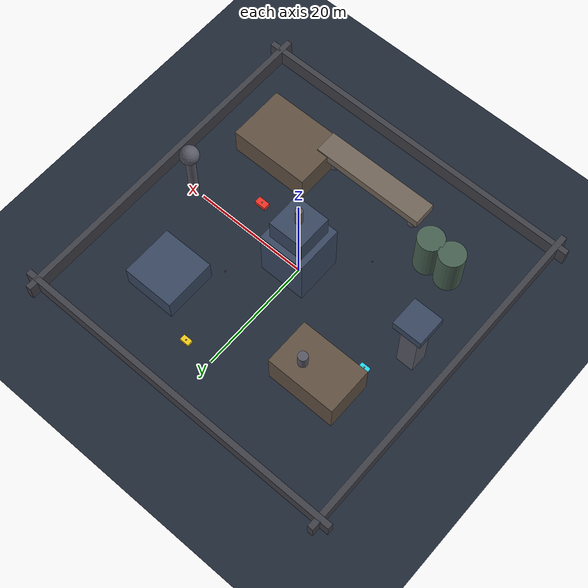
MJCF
<mujoco model="tactical_urban_world_v2">
  <compiler angle="radian" coordinate="local" autolimits="true"/>

  <option timestep="0.001" integrator="implicitfast" gravity="0 0 -9.81"
          viscosity="1.8e-5" density="1.225" wind="0 0 0"
          cone="elliptic" impratio="10"/>

  <visual>
    <global offwidth="1920" offheight="1080"/>
    <quality shadowsize="2048"/>
  </visual>

  <default>
    <joint armature="0.0001" damping="0.001"/>
    <geom condim="4" friction="0.8 0.01 0.01" margin="0.001"/>
    <motor ctrllimited="true" ctrlrange="0 1"/>
    <default class="visual">
      <geom contype="0" conaffinity="0" group="1"/>
    </default>
    <default class="collision">
      <geom group="0"/>
    </default>
  </default>

  <asset>
    <texture name="grid_floor" type="2d" builtin="checker" width="512" height="512"
             rgb1="0.10 0.13 0.18" rgb2="0.15 0.19 0.25"/>
    <material name="floor_mat" texture="grid_floor" texrepeat="30 30" reflectance="0.05"/>

    <material name="mat_skyscraper" rgba="0.22 0.28 0.38 1" specular="0.5" shininess="0.6"/>
    <material name="mat_industrial" rgba="0.38 0.32 0.26 1" specular="0.3" shininess="0.3"/>
    <material name="mat_silo" rgba="0.28 0.38 0.32 1" specular="0.4" shininess="0.5"/>
    <material name="mat_tower" rgba="0.35 0.35 0.40 1" specular="0.6" shininess="0.7"/>
    <material name="mat_bridge" rgba="0.45 0.40 0.35 1" specular="0.3"/>
    <material name="mat_wall" rgba="0.25 0.25 0.28 1"/>

    <!-- Target Materials -->
    <material name="target_mat_convoy" rgba="0.95 0.20 0.15 1" emission="0.7"/>
    <material name="target_mat_fast" rgba="0.15 0.85 0.95 1" emission="0.7"/>
    <material name="target_mat_shadow" rgba="0.95 0.80 0.10 1" emission="0.7"/>

    <!-- Heterogeneous Drone Materials -->
    <material name="drone_0_heavy" rgba="0.15 0.35 0.65 1" specular="0.5"/>
    <material name="drone_1_fast" rgba="0.85 0.30 0.15 1" specular="0.6"/>
    <material name="drone_2_thermal" rgba="0.15 0.75 0.45 1" specular="0.5"/>
    <material name="drone_3_relay" rgba="0.65 0.25 0.75 1" specular="0.5"/>
    <material name="prop_mat" rgba="0.4 0.4 0.45 0.7"/>
  </asset>

  <worldbody>
    <!-- Tactical Theater Floor (60m x 60m) -->
    <geom name="floor" type="plane" size="45 45 0.1" material="floor_mat"/>
    <light name="sun" pos="0 0 60" dir="0 0 -1" diffuse="0.9 0.9 0.95" specular="0.4 0.4 0.4" directional="true"/>
    <light name="fill" pos="-30 -30 35" dir="1 1 -1.5" diffuse="0.35 0.35 0.40" directional="true"/>

    <!-- ================= 8 URBAN TACTICAL STRUCTURES ================= -->
    <!-- 1. Central Skyscraper Alpha (14m Tall Multi-Tier) -->
    <body name="skyscraper_alpha" pos="0.0 0.0 7.0">
      <geom name="skyscraper_base" type="box" size="4.0 4.0 5.0" material="mat_skyscraper"/>
      <geom name="skyscraper_mid" type="box" size="3.0 3.0 2.0" pos="0 0 7.0" material="mat_skyscraper"/>
      <geom name="skyscraper_spire" type="cylinder" size="0.6 2.0" pos="0 0 10.0" material="mat_tower"/>
    </body>

    <!-- 2. Industrial Complex Bravo (6m Tall) -->
    <body name="complex_bravo" pos="-14.0 12.0 3.0">
      <geom name="complex_bravo_main" type="box" size="6.0 4.0 3.0" material="mat_industrial"/>
      <geom name="complex_bravo_vent" type="cylinder" size="0.8 1.5" pos="2 1 4.0" material="mat_tower"/>
    </body>

    <!-- 3. Grain Silo Cluster Charlie (8m Tall) -->
    <body name="silo_cluster_charlie" pos="-16.0 -14.0 4.0">
      <geom name="silo_1" type="cylinder" size="2.2 4.0" pos="-2.0 0 0" material="mat_silo"/>
      <geom name="silo_2" type="cylinder" size="2.2 4.0" pos="2.0 0 0" material="mat_silo"/>
    </body>

    <!-- 4. Logistics Warehouse Depot Delta (5m Tall) -->
    <body name="depot_delta" pos="15.0 -15.0 2.5">
      <geom name="depot_delta_geom" type="box" size="7.0 5.0 2.5" material="mat_industrial"/>
    </body>

    <!-- 5. High-Voltage Power Substation Echo (4m Tall) -->
    <body name="substation_echo" pos="14.0 14.0 2.0">
      <geom name="substation_echo_geom" type="box" size="4.5 4.5 2.0" material="mat_skyscraper"/>
    </body>

    <!-- 6. Communications Radar Pylon Foxtrot (10m Tall) -->
    <body name="radar_pylon_foxtrot" pos="22.0 0.0 5.0">
      <geom name="pylon_mast" type="cylinder" size="0.8 5.0" material="mat_tower"/>
      <geom name="pylon_dish" type="sphere" size="1.6" pos="0 0 5.5" material="mat_tower"/>
    </body>

    <!-- 7. Security Tower Golf (12m Tall) -->
    <body name="security_tower_golf" pos="-22.0 0.0 6.0">
      <geom name="tower_golf_mast" type="box" size="1.5 1.5 6.0" material="mat_tower"/>
      <geom name="tower_golf_cap" type="box" size="2.5 2.5 0.8" pos="0 0 6.5" material="mat_skyscraper"/>
    </body>

    <!-- 8. Elevated Skybridge Hotel (7m Clearance Overpass) -->
    <body name="skybridge_hotel" pos="0.0 -18.0 4.5">
      <geom name="bridge_span" type="box" size="10.0 2.0 0.8" material="mat_bridge"/>
      <geom name="bridge_pillar_l" type="cylinder" size="0.8 3.5" pos="-8 0 -3.5" material="mat_tower"/>
      <geom name="bridge_pillar_r" type="cylinder" size="0.8 3.5" pos="8 0 -3.5" material="mat_tower"/>
    </body>

    <!-- Perimeter Boundary Walls -->
    <geom name="wall_n" type="box" size="30.0 0.5 1.5" pos="0 28.0 1.5" material="mat_wall"/>
    <geom name="wall_s" type="box" size="30.0 0.5 1.5" pos="0 -28.0 1.5" material="mat_wall"/>
    <geom name="wall_e" type="box" size="0.5 30.0 1.5" pos="28.0 0 1.5" material="mat_wall"/>
    <geom name="wall_w" type="box" size="0.5 30.0 1.5" pos="-28.0 0 1.5" material="mat_wall"/>

    <!-- ================= 3 DYNAMIC EVASIVE GROUND TARGETS ================= -->
    <!-- Target 0: Armored Convoy Leader -->
    <body name="target_0" pos="12.0 -5.0 0.35">
      <joint name="target_0_joint" type="free"/>
      <geom name="target_0_geom" type="box" size="1.0 0.6 0.35" material="target_mat_convoy"/>
      <site name="target_0_beacon" pos="0 0 0.4" size="0.12"/>
    </body>

    <!-- Target 1: Fast Evasive Interceptor -->
    <body name="target_1" pos="-18.0 6.0 0.30">
      <joint name="target_1_joint" type="free"/>
      <geom name="target_1_geom" type="box" size="0.8 0.5 0.30" material="target_mat_fast"/>
      <site name="target_1_beacon" pos="0 0 0.35" size="0.12"/>
    </body>

    <!-- Target 2: Stealth Shadow Asset -->
    <body name="target_2" pos="5.0 20.0 0.30">
      <joint name="target_2_joint" type="free"/>
      <geom name="target_2_geom" type="box" size="0.8 0.5 0.30" material="target_mat_shadow"/>
      <site name="target_2_beacon" pos="0 0 0.35" size="0.12"/>
    </body>

    <!-- ================= 4 QUADROTOR DRONE BODIES ================= -->
    <body name="drone_0" pos="-8 8 1.5">
      <joint name="drone_0_joint" type="free"/>
      <inertial pos="0 0 0" mass="0.65" diaginertia="1.1e-3 1.1e-3 2.1e-3"/>
      <geom type="box" size="0.045 0.045 0.02" material="drone_0_heavy"/>
      <geom type="capsule" fromto="0 0 0 0.085 0.085 0" size="0.005" material="drone_0_heavy"/>
      <geom type="capsule" fromto="0 0 0 -0.085 0.085 0" size="0.005" material="drone_0_heavy"/>
      <geom type="capsule" fromto="0 0 0 0.085 -0.085 0" size="0.005" material="drone_0_heavy"/>
      <geom type="capsule" fromto="0 0 0 -0.085 -0.085 0" size="0.005" material="drone_0_heavy"/>
      <geom type="cylinder" size="0.06 0.001" pos="0.085 0.085 0" material="prop_mat"/>
      <geom type="cylinder" size="0.06 0.001" pos="-0.085 0.085 0" material="prop_mat"/>
      <geom type="cylinder" size="0.06 0.001" pos="0.085 -0.085 0" material="prop_mat"/>
      <geom type="cylinder" size="0.06 0.001" pos="-0.085 -0.085 0" material="prop_mat"/>
    </body>

    <body name="drone_1" pos="8 8 1.5">
      <joint name="drone_1_joint" type="free"/>
      <inertial pos="0 0 0" mass="0.28" diaginertia="1.1e-3 1.1e-3 2.1e-3"/>
      <geom type="box" size="0.045 0.045 0.02" material="drone_1_fast"/>
      <geom type="capsule" fromto="0 0 0 0.085 0.085 0" size="0.005" material="drone_1_fast"/>
      <geom type="capsule" fromto="0 0 0 -0.085 0.085 0" size="0.005" material="drone_1_fast"/>
      <geom type="capsule" fromto="0 0 0 0.085 -0.085 0" size="0.005" material="drone_1_fast"/>
      <geom type="capsule" fromto="0 0 0 -0.085 -0.085 0" size="0.005" material="drone_1_fast"/>
      <geom type="cylinder" size="0.06 0.001" pos="0.085 0.085 0" material="prop_mat"/>
      <geom type="cylinder" size="0.06 0.001" pos="-0.085 0.085 0" material="prop_mat"/>
      <geom type="cylinder" size="0.06 0.001" pos="0.085 -0.085 0" material="prop_mat"/>
      <geom type="cylinder" size="0.06 0.001" pos="-0.085 -0.085 0" material="prop_mat"/>
    </body>

    <body name="drone_2" pos="-8 -8 1.5">
      <joint name="drone_2_joint" type="free"/>
      <inertial pos="0 0 0" mass="0.42" diaginertia="1.1e-3 1.1e-3 2.1e-3"/>
      <geom type="box" size="0.045 0.045 0.02" material="drone_2_thermal"/>
      <geom type="capsule" fromto="0 0 0 0.085 0.085 0" size="0.005" material="drone_2_thermal"/>
      <geom type="capsule" fromto="0 0 0 -0.085 0.085 0" size="0.005" material="drone_2_thermal"/>
      <geom type="capsule" fromto="0 0 0 0.085 -0.085 0" size="0.005" material="drone_2_thermal"/>
      <geom type="capsule" fromto="0 0 0 -0.085 -0.085 0" size="0.005" material="drone_2_thermal"/>
      <geom type="cylinder" size="0.06 0.001" pos="0.085 0.085 0" material="prop_mat"/>
      <geom type="cylinder" size="0.06 0.001" pos="-0.085 0.085 0" material="prop_mat"/>
      <geom type="cylinder" size="0.06 0.001" pos="0.085 -0.085 0" material="prop_mat"/>
      <geom type="cylinder" size="0.06 0.001" pos="-0.085 -0.085 0" material="prop_mat"/>
    </body>

    <body name="drone_3" pos="0 0 9.5">
      <joint name="drone_3_joint" type="free"/>
      <inertial pos="0 0 0" mass="0.50" diaginertia="1.1e-3 1.1e-3 2.1e-3"/>
      <geom type="box" size="0.045 0.045 0.02" material="drone_3_relay"/>
      <geom type="capsule" fromto="0 0 0 0.085 0.085 0" size="0.005" material="drone_3_relay"/>
      <geom type="capsule" fromto="0 0 0 -0.085 0.085 0" size="0.005" material="drone_3_relay"/>
      <geom type="capsule" fromto="0 0 0 0.085 -0.085 0" size="0.005" material="drone_3_relay"/>
      <geom type="capsule" fromto="0 0 0 -0.085 -0.085 0" size="0.005" material="drone_3_relay"/>
      <geom type="cylinder" size="0.06 0.001" pos="0.085 0.085 0" material="prop_mat"/>
      <geom type="cylinder" size="0.06 0.001" pos="-0.085 0.085 0" material="prop_mat"/>
      <geom type="cylinder" size="0.06 0.001" pos="0.085 -0.085 0" material="prop_mat"/>
      <geom type="cylinder" size="0.06 0.001" pos="-0.085 -0.085 0" material="prop_mat"/>
    </body>

  </worldbody>
</mujoco>
